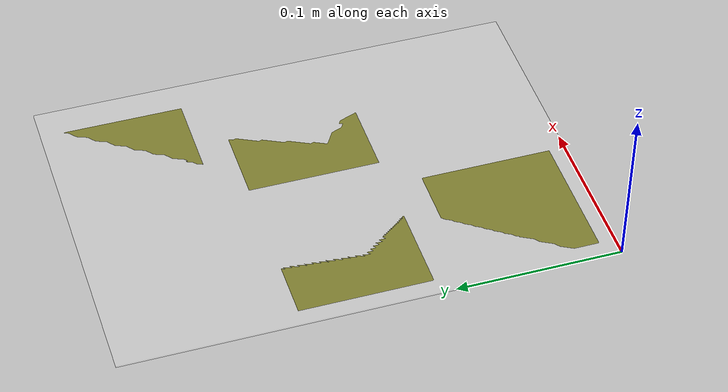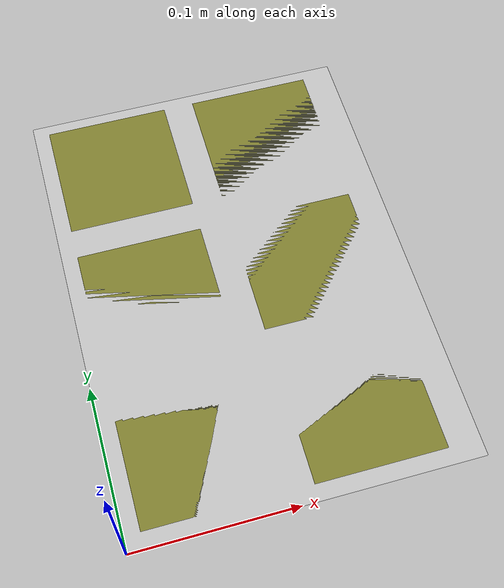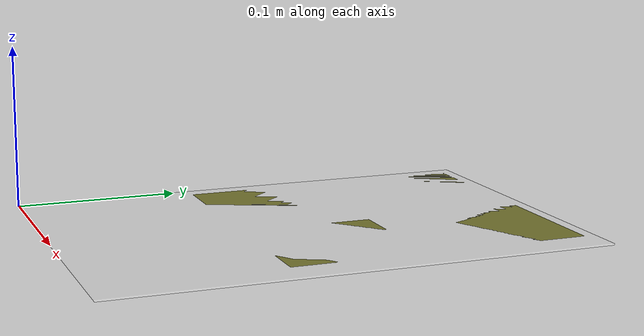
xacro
<?xml version="1.0" encoding="utf-8"?>
<robot xmlns:xacro="http://www.ros.org/wiki/xacro" name="calibration_1b">

  <!-- upper left corner of grid  -->
  <link name="calibration_1b_base_link">
    <visual>
     <origin xyz ="0.105 0.1485 0" rpy ="0 0 0"/>
     <geometry>
       <box size="0.21 0.297 1e-3" />
     </geometry>
     <material name="TransparentWhite">
       <color rgba="1 1 1 0.2"/>
     </material>
   </visual>
  </link>

  <!-- aruco 907 -->
  <link name="aruco_907">
    <visual>
     <geometry>
       <box size="0.08 0.08 0.001" />
     </geometry>
     <material name="Yellow">
       <color rgba="0.5 0.5 0.1 0.8"/>
     </material>
   </visual>
  </link>

  <!-- aruco 908   -->
  <link name="aruco_908">
    <visual>
     <geometry>
       <box size="0.08 0.08 0.001" />
     </geometry>
     <material name="Yellow">
       <color rgba="0.5 0.5 0.1 0.8"/>
     </material>
   </visual>
  </link>

  <!-- aruco 909   -->
  <link name="aruco_909">
    <visual>
     <geometry>
       <box size="0.08 0.08 0.001" />
     </geometry>
     <material name="Yellow">
       <color rgba="0.5 0.5 0.1 0.8"/>
     </material>
   </visual>
  </link>

  <!-- aruco 910   -->
  <link name="aruco_910">
    <visual>
     <geometry>
       <box size="0.08 0.08 0.001" />
     </geometry>
     <material name="Yellow">
       <color rgba="0.5 0.5 0.1 0.8"/>
     </material>
   </visual>
  </link>

  <!-- aruco 911   -->
  <link name="aruco_911">
    <visual>
     <geometry>
       <box size="0.08 0.08 0.001" />
     </geometry>
     <material name="Yellow">
       <color rgba="0.5 0.5 0.1 0.8"/>
     </material>
   </visual>
  </link>

  <!-- aruco 912   -->
  <link name="aruco_912">
    <visual>
     <geometry>
       <box size="0.08 0.08 0.001" />
     </geometry>
     <material name="Yellow">
       <color rgba="0.5 0.5 0.1 0.8"/>
     </material>
   </visual>
  </link>

  <!-- position aruco markers -->
  <joint name="base_link-aruco_907" type="fixed">
    <origin rpy="0 0 0" xyz="0.05 0.05 0"/>
    <parent link="calibration_1b_base_link"/>
    <child link="aruco_907"/>
  </joint>

  <joint name="base_link-aruco_908" type="fixed">
    <origin rpy="0 0 0" xyz="0.15 0.05 0"/>
    <parent link="calibration_1b_base_link"/>
    <child link="aruco_908"/>
  </joint>

  <joint name="base_link-aruco_909" type="fixed">
    <origin rpy="0 0 0" xyz="0.05 0.15 0"/>
    <parent link="calibration_1b_base_link"/>
    <child link="aruco_909"/>
  </joint>

  <joint name="base_link-aruco_910" type="fixed">
    <origin rpy="0 0 0" xyz="0.15 0.15 0"/>
    <parent link="calibration_1b_base_link"/>
    <child link="aruco_910"/>
  </joint>

  <joint name="base_link-aruco_911" type="fixed">
    <origin rpy="0 0 0" xyz="0.05 0.25 0"/>
    <parent link="calibration_1b_base_link"/>
    <child link="aruco_911"/>
  </joint>

  <joint name="base_link-aruco_912" type="fixed">
    <origin rpy="0 0 0" xyz="0.15 0.25 0"/>
    <parent link="calibration_1b_base_link"/>
    <child link="aruco_912"/>
  </joint>

</robot>
